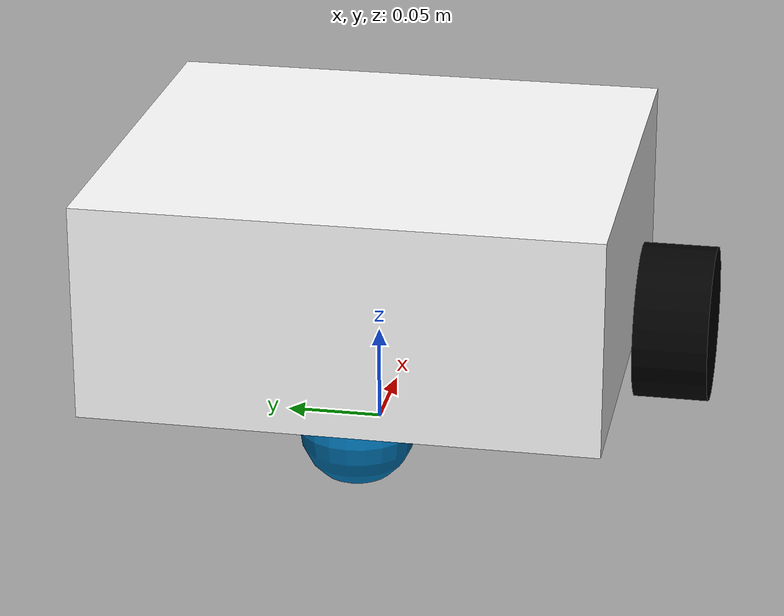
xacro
<?xml version="1.0"?>
<robot xmlns:xacro="http://www.ros.org/wiki/xacro">
    <xacro:arg name="is_ignition" default="true"/>

    <xacro:arg name="is_sim" default="true"/>

    <xacro:property name="body_length" value="0.238"/>
    <xacro:property name="body_width" value="0.265"/>
    <xacro:property name="body_height" value="0.112"/>
    <xacro:property name="wheel_radius" value="0.042"/>
    <xacro:property name="wheel_width" value="0.04"/>
    <xacro:property name="PI" value="3.14159265359"/>
    <xacro:property name="wheel_offset_y" value="0.02"/>

    <xacro:include filename="inertia_macros.urdf.xacro"/>

    <material name="white">
        <color rgba="1.0 1.0 1.0 1.0"/>
    </material>
    <material name="black">
        <color rgba="0.0 0.0 0.0 1.0"/>
    </material>

    <link name="base_footprint"/>

    <link name="base_link">
        <visual>
            <origin xyz="0.0 0.0 0.0" rpy="0.0 0.0 0.0"/>
            <geometry>
                <box size="${body_length} ${body_width} ${body_height}"/>
            </geometry>
            <material name="white"/>
        </visual>
        <collision>
            <origin xyz="0.0 0.0 0.0" rpy="0.0 0.0 0.0"/>
            <geometry>
                <box size="${body_length} ${body_width} ${body_height}"/>
            </geometry>
            <material name="white"/>
        </collision>
        <xacro:inertial_box mass="2.5" x="${body_length}" y="${body_width}" z="${body_height}">
            <origin xyz="0.0 0.0 0.0" rpy="0.0 0.0 0.0"/>
        </xacro:inertial_box>
    </link>

    <joint name="base_base_link_joint" type="fixed">
        <parent link="base_footprint"/>
        <child link="base_link"/>
        <origin xyz="0.0 0.0 ${body_height/2 + wheel_radius}" rpy="0.0 0.0 0.0"/>
    </joint>

    <link name="left_wheel_link">
        <visual>
            <origin xyz="0.0 0.0 0.0" rpy="${PI/2} 0.0 0.0"/>
            <geometry>
                <cylinder radius="${wheel_radius}" length="${wheel_width}"/>
            </geometry>
            <material name="black"/>
        </visual>
        <collision>
                <origin xyz="0.0 0.0 0.0" rpy="${PI/2} 0.0 0.0"/>
            <geometry>
                <cylinder radius="${wheel_radius}" length="${wheel_width}"/>
            </geometry>
            <material name="black"/>
        </collision>
        <xacro:inertial_cylinder mass="0.5" length="${wheel_width}" radius="${wheel_radius}">
            <origin xyz="0.0 0.0 0.0" rpy="${PI/2} 0.0 0.0"/>
        </xacro:inertial_cylinder>
    </link>

    <joint name="left_wheel_joint" type="continuous">
        <parent link="base_link"/>
        <child link="left_wheel_link"/>
        <origin xyz="${body_length/4} ${body_width/2 + wheel_offset_y} ${-body_height/2}" rpy="0.0 0.0 0.0"/>
        <axis xyz="0 1 0"/>
    </joint>

    <link name="right_wheel_link">
        <visual>
            <origin xyz="0.0 0.0 0.0" rpy="${PI/2} 0.0 0.0"/>
            <geometry>
                <cylinder radius="${wheel_radius}" length="${wheel_width}"/>
            </geometry>
            <material name="black"/>
        </visual>
        <collision>
                <origin xyz="0.0 0.0 0.0" rpy="${PI/2} 0.0 0.0"/>
            <geometry>
                <cylinder radius="${wheel_radius}" length="${wheel_width}"/>
            </geometry>
            <material name="black"/>
        </collision>
        <xacro:inertial_cylinder mass="0.5" length="${wheel_width}" radius="${wheel_radius}">
            <origin xyz="0.0 0.0 0.0" rpy="${PI/2} 0.0 0.0"/>
        </xacro:inertial_cylinder>
    </link>

    <joint name="right_wheel_joint" type="continuous">
        <parent link="base_link"/>
        <child link="right_wheel_link"/>
        <origin xyz="${body_length/4} ${-body_width/2 - wheel_offset_y} ${-body_height/2}" rpy="0.0 0.0 0.0"/>
        <axis xyz="0 1 0"/>
    </joint>

    <link name="caster_wheel">
        <visual>
            <origin xyz="0.0 0.0 0.0" rpy="0.0 0.0 0.0"/>
            <geometry>
                <sphere radius="0.03"/>
            </geometry>
        </visual>
        <collision>
            <origin xyz="0.0 0.0 0.0" rpy="0.0 0.0 0.0"/>
            <geometry>
                <sphere radius="${wheel_radius/2}"/>
            </geometry>
        </collision>
        <xacro:inertial_sphere mass="0.5" radius="${wheel_radius/2}">
            <origin xyz="0 0 0" rpy="0 0 0"/>
        </xacro:inertial_sphere>
    </link>

    <joint name="caster_base_joint" type="fixed">
        <parent link="base_link"/>
        <child link="caster_wheel"/>
        <origin xyz="${-body_length/4} 0.0 ${-body_height/2 - wheel_radius/2}" rpy="0.0 0.0 0.0"/>

    </joint>

</robot>
